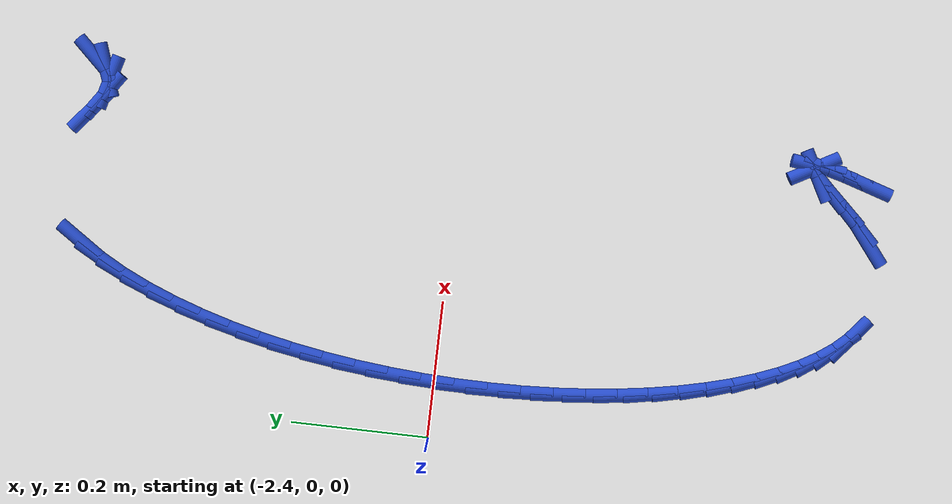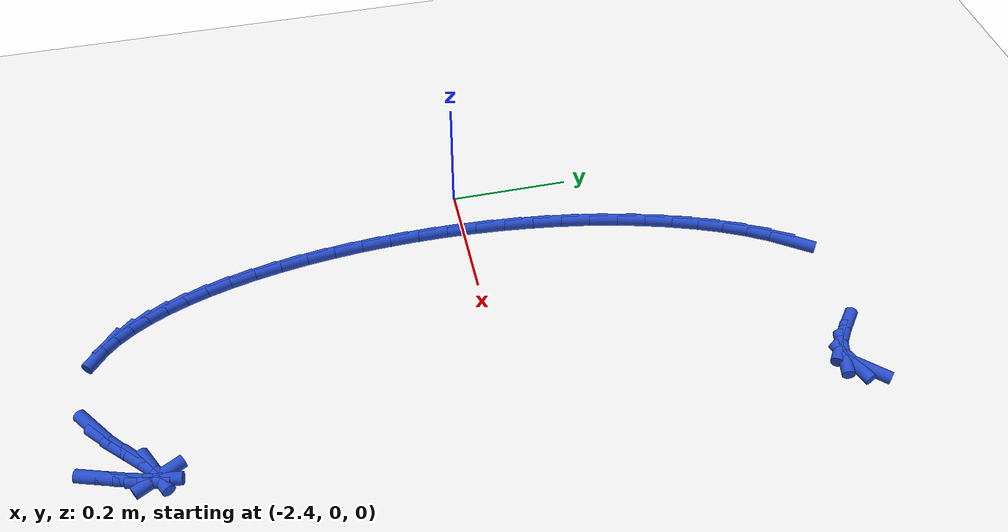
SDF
<sdf version="1.6">
 <world name="default">
  <model name="ground_plane">
   <static>1</static>
   <link name="link">
    <collision name="collision">
     <geometry><plane><normal>0 0 1</normal><size>100 100</size></plane></geometry>
     <surface><friction><ode><mu>100</mu><mu2>50</mu2></ode></friction></surface>
    </collision>
    <visual name="visual">
     <cast_shadows>0</cast_shadows>
     <geometry><plane><normal>0 0 1</normal><size>100 100</size></plane></geometry>
     <material>
      <script><uri>file://media/materials/scripts/gazebo.material</uri><name>Gazebo/WhiteGlow</name></script>
     </material>
    </visual>
   </link>
  </model>
  <model name="line">
   <link name="link_99">
    <pose>-1.906809323400924 0.5409290278547395 0.01 0 1.57 0.8167931215536853</pose>
    <collision name="collision">
     <geometry><cylinder><radius>0.01</radius><length>0.08</length></cylinder></geometry>
    </collision>
    <visual name="visual">
     <material>
      <script><name>Gazebo/Blue</name><uri>file://media/materials/scripts/gazebo.material</uri></script>
     </material>
     <geometry><cylinder><radius>0.01</radius><length>0.08</length></cylinder></geometry>
    </visual>
   </link>
   <link name="link_100">
    <pose>-1.921108359208225 0.5257027411152598 0.01 0 1.57 0.3353565191186797</pose>
    <collision name="collision">
     <geometry><cylinder><radius>0.01</radius><length>0.08</length></cylinder></geometry>
    </collision>
    <visual name="visual">
     <material>
      <script><name>Gazebo/Blue</name><uri>file://media/materials/scripts/gazebo.material</uri></script>
     </material>
     <geometry><cylinder><radius>0.01</radius><length>0.08</length></cylinder></geometry>
    </visual>
   </link>
   <link name="link_101">
    <pose>-1.937751852846533 0.519902135907028 0.01 0 1.57 -0.25641425727721084</pose>
    <collision name="collision">
     <geometry><cylinder><radius>0.01</radius><length>0.08</length></cylinder></geometry>
    </collision>
    <visual name="visual">
     <material>
      <script><name>Gazebo/Blue</name><uri>file://media/materials/scripts/gazebo.material</uri></script>
     </material>
     <geometry><cylinder><radius>0.01</radius><length>0.08</length></cylinder></geometry>
    </visual>
   </link>
   <link name="link_102">
    <pose>-1.9573944007874413 0.5250521308455129 0.01 0 1.57 -0.605454132422045</pose>
    <collision name="collision">
     <geometry><cylinder><radius>0.01</radius><length>0.08</length></cylinder></geometry>
    </collision>
    <visual name="visual">
     <material>
      <script><name>Gazebo/Blue</name><uri>file://media/materials/scripts/gazebo.material</uri></script>
     </material>
     <geometry><cylinder><radius>0.01</radius><length>0.08</length></cylinder></geometry>
    </visual>
   </link>
   <link name="link_103">
    <pose>-1.9802664832556274 0.5408835865972785 0.01 0 1.57 -0.6928064203830322</pose>
    <collision name="collision">
     <geometry><cylinder><radius>0.01</radius><length>0.08</length></cylinder></geometry>
    </collision>
    <visual name="visual">
     <material>
      <script><name>Gazebo/Blue</name><uri>file://media/materials/scripts/gazebo.material</uri></script>
     </material>
     <geometry><cylinder><radius>0.01</radius><length>0.08</length></cylinder></geometry>
    </visual>
   </link>
   <link name="link_111">
    <pose>-2.1729995002740634 0.5329822747591195 0.01 0 1.57 0.9794438816415018</pose>
    <collision name="collision">
     <geometry><cylinder><radius>0.01</radius><length>0.08</length></cylinder></geometry>
    </collision>
    <visual name="visual">
     <material>
      <script><name>Gazebo/Blue</name><uri>file://media/materials/scripts/gazebo.material</uri></script>
     </material>
     <geometry><cylinder><radius>0.01</radius><length>0.08</length></cylinder></geometry>
    </visual>
   </link>
   <link name="link_112">
    <pose>-2.193157319585092 0.5029639072756674 0.01 0 1.57 1.0691467052010173</pose>
    <collision name="collision">
     <geometry><cylinder><radius>0.01</radius><length>0.08</length></cylinder></geometry>
    </collision>
    <visual name="visual">
     <material>
      <script><name>Gazebo/Blue</name><uri>file://media/materials/scripts/gazebo.material</uri></script>
     </material>
     <geometry><cylinder><radius>0.01</radius><length>0.08</length></cylinder></geometry>
    </visual>
   </link>
   <link name="link_113">
    <pose>-2.2120582780178952 0.4685011785593793 0.01 0 1.57 1.1403304168800363</pose>
    <collision name="collision">
     <geometry><cylinder><radius>0.01</radius><length>0.08</length></cylinder></geometry>
    </collision>
    <visual name="visual">
     <material>
      <script><name>Gazebo/Blue</name><uri>file://media/materials/scripts/gazebo.material</uri></script>
     </material>
     <geometry><cylinder><radius>0.01</radius><length>0.08</length></cylinder></geometry>
    </visual>
   </link>
   <link name="link_114">
    <pose>-2.2296031325204053 0.43029249887586946 0.01 0 1.57 1.198949056230838</pose>
    <collision name="collision">
     <geometry><cylinder><radius>0.01</radius><length>0.08</length></cylinder></geometry>
    </collision>
    <visual name="visual">
     <material>
      <script><name>Gazebo/Blue</name><uri>file://media/materials/scripts/gazebo.material</uri></script>
     </material>
     <geometry><cylinder><radius>0.01</radius><length>0.08</length></cylinder></geometry>
    </visual>
   </link>
   <link name="link_115">
    <pose>-2.245692640040555 0.3890362784907521 0.01 0 1.57 1.249049889081817</pose>
    <collision name="collision">
     <geometry><cylinder><radius>0.01</radius><length>0.08</length></cylinder></geometry>
    </collision>
    <visual name="visual">
     <material>
      <script><name>Gazebo/Blue</name><uri>file://media/materials/scripts/gazebo.material</uri></script>
     </material>
     <geometry><cylinder><radius>0.01</radius><length>0.08</length></cylinder></geometry>
    </visual>
   </link>
   <link name="link_116">
    <pose>-2.260227557526275 0.345430927669643 0.01 0 1.57 1.293503705762621</pose>
    <collision name="collision">
     <geometry><cylinder><radius>0.01</radius><length>0.08</length></cylinder></geometry>
    </collision>
    <visual name="visual">
     <material>
      <script><name>Gazebo/Blue</name><uri>file://media/materials/scripts/gazebo.material</uri></script>
     </material>
     <geometry><cylinder><radius>0.01</radius><length>0.08</length></cylinder></geometry>
    </visual>
   </link>
   <link name="link_117">
    <pose>-2.273111768877924 0.30016366249812937 0.01 0 1.57 1.3342664124379706</pose>
    <collision name="collision">
     <geometry><cylinder><radius>0.01</radius><length>0.08</length></cylinder></geometry>
    </collision>
    <visual name="visual">
     <material>
      <script><name>Gazebo/Blue</name><uri>file://media/materials/scripts/gazebo.material</uri></script>
     </material>
     <geometry><cylinder><radius>0.01</radius><length>0.08</length></cylinder></geometry>
    </visual>
   </link>
   <link name="link_118">
    <pose>-2.2843138011984596 0.2536902827980969 0.01 0 1.57 1.3721663174378034</pose>
    <collision name="collision">
     <geometry><cylinder><radius>0.01</radius><length>0.08</length></cylinder></geometry>
    </collision>
    <visual name="visual">
     <material>
      <script><name>Gazebo/Blue</name><uri>file://media/materials/scripts/gazebo.material</uri></script>
     </material>
     <geometry><cylinder><radius>0.01</radius><length>0.08</length></cylinder></geometry>
    </visual>
   </link>
   <link name="link_119">
    <pose>-2.293863023351448 0.20624878091357815 0.01 0 1.57 1.4077055696269225</pose>
    <collision name="collision">
     <geometry><cylinder><radius>0.01</radius><length>0.08</length></cylinder></geometry>
    </collision>
    <visual name="visual">
     <material>
      <script><name>Gazebo/Blue</name><uri>file://media/materials/scripts/gazebo.material</uri></script>
     </material>
     <geometry><cylinder><radius>0.01</radius><length>0.08</length></cylinder></geometry>
    </visual>
   </link>
   <link name="link_120">
    <pose>-2.3017911699889386 0.15806867990013376 0.01 0 1.57 1.4413352562314745</pose>
    <collision name="collision">
     <geometry><cylinder><radius>0.01</radius><length>0.08</length></cylinder></geometry>
    </collision>
    <visual name="visual">
     <material>
      <script><name>Gazebo/Blue</name><uri>file://media/materials/scripts/gazebo.material</uri></script>
     </material>
     <geometry><cylinder><radius>0.01</radius><length>0.08</length></cylinder></geometry>
    </visual>
   </link>
   <link name="link_121">
    <pose>-2.3081299757629776 0.10937950281332486 0.01 0 1.57 1.4734670192099046</pose>
    <collision name="collision">
     <geometry><cylinder><radius>0.01</radius><length>0.08</length></cylinder></geometry>
    </collision>
    <visual name="visual">
     <material>
      <script><name>Gazebo/Blue</name><uri>file://media/materials/scripts/gazebo.material</uri></script>
     </material>
     <geometry><cylinder><radius>0.01</radius><length>0.08</length></cylinder></geometry>
    </visual>
   </link>
   <link name="link_122">
    <pose>-2.3129111753256137 0.06041077270871245 0.01 0 1.57 1.5044838578357718</pose>
    <collision name="collision">
     <geometry><cylinder><radius>0.01</radius><length>0.08</length></cylinder></geometry>
    </collision>
    <visual name="visual">
     <material>
      <script><name>Gazebo/Blue</name><uri>file://media/materials/scripts/gazebo.material</uri></script>
     </material>
     <geometry><cylinder><radius>0.01</radius><length>0.08</length></cylinder></geometry>
    </visual>
   </link>
   <link name="link_123">
    <pose>-2.316166503328893 0.011392012641856889 0.01 0 1.57 1.5347509807749373</pose>
    <collision name="collision">
     <geometry><cylinder><radius>0.01</radius><length>0.08</length></cylinder></geometry>
    </collision>
    <visual name="visual">
     <material>
      <script><name>Gazebo/Blue</name><uri>file://media/materials/scripts/gazebo.material</uri></script>
     </material>
     <geometry><cylinder><radius>0.01</radius><length>0.08</length></cylinder></geometry>
    </visual>
   </link>
   <link name="link_124">
    <pose>-2.3179276944248643 -0.03744725433167929 0.01 0 1.57 1.5646269379347642</pose>
    <collision name="collision">
     <geometry><cylinder><radius>0.01</radius><length>0.08</length></cylinder></geometry>
    </collision>
    <visual name="visual">
     <material>
      <script><name>Gazebo/Blue</name><uri>file://media/materials/scripts/gazebo.material</uri></script>
     </material>
     <geometry><cylinder><radius>0.01</radius><length>0.08</length></cylinder></geometry>
    </visual>
   </link>
   <link name="link_125">
    <pose>-2.318226483265575 -0.08587750515633565 0.01 0 1.57 -1.5471171747569328</pose>
    <collision name="collision">
     <geometry><cylinder><radius>0.01</radius><length>0.08</length></cylinder></geometry>
    </collision>
    <visual name="visual">
     <material>
      <script><name>Gazebo/Blue</name><uri>file://media/materials/scripts/gazebo.material</uri></script>
     </material>
     <geometry><cylinder><radius>0.01</radius><length>0.08</length></cylinder></geometry>
    </visual>
   </link>
   <link name="link_126">
    <pose>-2.3170946045030707 -0.13366921677655177 0.01 0 1.57 -1.5169138598160812</pose>
    <collision name="collision">
     <geometry><cylinder><radius>0.01</radius><length>0.08</length></cylinder></geometry>
    </collision>
    <visual name="visual">
     <material>
      <script><name>Gazebo/Blue</name><uri>file://media/materials/scripts/gazebo.material</uri></script>
     </material>
     <geometry><cylinder><radius>0.01</radius><length>0.08</length></cylinder></geometry>
    </visual>
   </link>
   <link name="link_127">
    <pose>-2.314563792789401 -0.18059286613676548 0.01 0 1.57 -1.4859396079321368</pose>
    <collision name="collision">
     <geometry><cylinder><radius>0.01</radius><length>0.08</length></cylinder></geometry>
    </collision>
    <visual name="visual">
     <material>
      <script><name>Gazebo/Blue</name><uri>file://media/materials/scripts/gazebo.material</uri></script>
     </material>
     <geometry><cylinder><radius>0.01</radius><length>0.08</length></cylinder></geometry>
    </visual>
   </link>
   <link name="link_128">
    <pose>-2.3106657827766126 -0.22641893018141596 0.01 0 1.57 -1.4537252107041712</pose>
    <collision name="collision">
     <geometry><cylinder><radius>0.01</radius><length>0.08</length></cylinder></geometry>
    </collision>
    <visual name="visual">
     <material>
      <script><name>Gazebo/Blue</name><uri>file://media/materials/scripts/gazebo.material</uri></script>
     </material>
     <geometry><cylinder><radius>0.01</radius><length>0.08</length></cylinder></geometry>
    </visual>
   </link>
   <link name="link_129">
    <pose>-2.3054323091167537 -0.2709178858549424 0.01 0 1.57 -1.4197240584472286</pose>
    <collision name="collision">
     <geometry><cylinder><radius>0.01</radius><length>0.08</length></cylinder></geometry>
    </collision>
    <visual name="visual">
     <material>
      <script><name>Gazebo/Blue</name><uri>file://media/materials/scripts/gazebo.material</uri></script>
     </material>
     <geometry><cylinder><radius>0.01</radius><length>0.08</length></cylinder></geometry>
    </visual>
   </link>
   <link name="link_130">
    <pose>-2.298895106461871 -0.31386021010178367 0.01 0 1.57 -1.3832800481411935</pose>
    <collision name="collision">
     <geometry><cylinder><radius>0.01</radius><length>0.08</length></cylinder></geometry>
    </collision>
    <visual name="visual">
     <material>
      <script><name>Gazebo/Blue</name><uri>file://media/materials/scripts/gazebo.material</uri></script>
     </material>
     <geometry><cylinder><radius>0.01</radius><length>0.08</length></cylinder></geometry>
    </visual>
   </link>
   <link name="link_131">
    <pose>-2.2910859094640115 -0.35501637986637863 0.01 0 1.57 -1.3435842871617092</pose>
    <collision name="collision">
     <geometry><cylinder><radius>0.01</radius><length>0.08</length></cylinder></geometry>
    </collision>
    <visual name="visual">
     <material>
      <script><name>Gazebo/Blue</name><uri>file://media/materials/scripts/gazebo.material</uri></script>
     </material>
     <geometry><cylinder><radius>0.01</radius><length>0.08</length></cylinder></geometry>
    </visual>
   </link>
   <link name="link_132">
    <pose>-2.2820364527752237 -0.39415687209316624 0.01 0 1.57 -1.2996157446668364</pose>
    <collision name="collision">
     <geometry><cylinder><radius>0.01</radius><length>0.08</length></cylinder></geometry>
    </collision>
    <visual name="visual">
     <material>
      <script><name>Gazebo/Blue</name><uri>file://media/materials/scripts/gazebo.material</uri></script>
     </material>
     <geometry><cylinder><radius>0.01</radius><length>0.08</length></cylinder></geometry>
    </visual>
   </link>
   <link name="link_133">
    <pose>-2.271778471047554 -0.43105216372658645 0.01 0 1.57 -1.2500593310110042</pose>
    <collision name="collision">
     <geometry><cylinder><radius>0.01</radius><length>0.08</length></cylinder></geometry>
    </collision>
    <visual name="visual">
     <material>
      <script><name>Gazebo/Blue</name><uri>file://media/materials/scripts/gazebo.material</uri></script>
     </material>
     <geometry><cylinder><radius>0.01</radius><length>0.08</length></cylinder></geometry>
    </visual>
   </link>
   <link name="link_134">
    <pose>-2.2603436989330508 -0.46547273171107584 0.01 0 1.57 -1.1931934989898938</pose>
    <collision name="collision">
     <geometry><cylinder><radius>0.01</radius><length>0.08</length></cylinder></geometry>
    </collision>
    <visual name="visual">
     <material>
      <script><name>Gazebo/Blue</name><uri>file://media/materials/scripts/gazebo.material</uri></script>
     </material>
     <geometry><cylinder><radius>0.01</radius><length>0.08</length></cylinder></geometry>
    </visual>
   </link>
   <link name="link_135">
    <pose>-2.2477638710837615 -0.4971890529910748 0.01 0 1.57 -1.1267404839115847</pose>
    <collision name="collision">
     <geometry><cylinder><radius>0.01</radius><length>0.08</length></cylinder></geometry>
    </collision>
    <visual name="visual">
     <material>
      <script><name>Gazebo/Blue</name><uri>file://media/materials/scripts/gazebo.material</uri></script>
     </material>
     <geometry><cylinder><radius>0.01</radius><length>0.08</length></cylinder></geometry>
    </visual>
   </link>
   <link name="link_136">
    <pose>-2.2340707221517335 -0.525971604511022 0.01 0 1.57 -1.0476822015319378</pose>
    <collision name="collision">
     <geometry><cylinder><radius>0.01</radius><length>0.08</length></cylinder></geometry>
    </collision>
    <visual name="visual">
     <material>
      <script><name>Gazebo/Blue</name><uri>file://media/materials/scripts/gazebo.material</uri></script>
     </material>
     <geometry><cylinder><radius>0.01</radius><length>0.08</length></cylinder></geometry>
    </visual>
   </link>
   <link name="link_137">
    <pose>-2.2192959867890147 -0.5515908632153563 0.01 0 1.57 -0.9520811039781029</pose>
    <collision name="collision">
     <geometry><cylinder><radius>0.01</radius><length>0.08</length></cylinder></geometry>
    </collision>
    <visual name="visual">
     <material>
      <script><name>Gazebo/Blue</name><uri>file://media/materials/scripts/gazebo.material</uri></script>
     </material>
     <geometry><cylinder><radius>0.01</radius><length>0.08</length></cylinder></geometry>
    </visual>
   </link>
   <link name="link_138">
    <pose>-2.203471399647651 -0.5738173060485168 0.01 0 1.57 -0.835048670912768</pose>
    <collision name="collision">
     <geometry><cylinder><radius>0.01</radius><length>0.08</length></cylinder></geometry>
    </collision>
    <visual name="visual">
     <material>
      <script><name>Gazebo/Blue</name><uri>file://media/materials/scripts/gazebo.material</uri></script>
     </material>
     <geometry><cylinder><radius>0.01</radius><length>0.08</length></cylinder></geometry>
    </visual>
   </link>
   <link name="link_139">
    <pose>-2.186628695379691 -0.5924214099549422 0.01 0 1.57 -0.6912415708592536</pose>
    <collision name="collision">
     <geometry><cylinder><radius>0.01</radius><length>0.08</length></cylinder></geometry>
    </collision>
    <visual name="visual">
     <material>
      <script><name>Gazebo/Blue</name><uri>file://media/materials/scripts/gazebo.material</uri></script>
     </material>
     <geometry><cylinder><radius>0.01</radius><length>0.08</length></cylinder></geometry>
    </visual>
   </link>
   <link name="link_146">
    <pose>-2.0428881967312646 -0.6019447106842102 0.01 0 1.57 0.6634211855150152</pose>
    <collision name="collision">
     <geometry><cylinder><radius>0.01</radius><length>0.08</length></cylinder></geometry>
    </collision>
    <visual name="visual">
     <material>
      <script><name>Gazebo/Blue</name><uri>file://media/materials/scripts/gazebo.material</uri></script>
     </material>
     <geometry><cylinder><radius>0.01</radius><length>0.08</length></cylinder></geometry>
    </visual>
   </link>
   <link name="link_147">
    <pose>-2.019043002924244 -0.5833072731765567 0.01 0 1.57 0.772413967675266</pose>
    <collision name="collision">
     <geometry><cylinder><radius>0.01</radius><length>0.08</length></cylinder></geometry>
    </collision>
    <visual name="visual">
     <material>
      <script><name>Gazebo/Blue</name><uri>file://media/materials/scripts/gazebo.material</uri></script>
     </material>
     <geometry><cylinder><radius>0.01</radius><length>0.08</length></cylinder></geometry>
    </visual>
   </link>
   <link name="link_148">
    <pose>-1.9947679590466256 -0.5596545675525821 0.01 0 1.57 0.8152183729248283</pose>
    <collision name="collision">
     <geometry><cylinder><radius>0.01</radius><length>0.08</length></cylinder></geometry>
    </collision>
    <visual name="visual">
     <material>
      <script><name>Gazebo/Blue</name><uri>file://media/materials/scripts/gazebo.material</uri></script>
     </material>
     <geometry><cylinder><radius>0.01</radius><length>0.08</length></cylinder></geometry>
    </visual>
   </link>
   <link name="link_149">
    <pose>-1.9724256607022668 -0.5359383884987498 0.01 0 1.57 0.7784592238975028</pose>
    <collision name="collision">
     <geometry><cylinder><radius>0.01</radius><length>0.08</length></cylinder></geometry>
    </collision>
    <visual name="visual">
     <material>
      <script><name>Gazebo/Blue</name><uri>file://media/materials/scripts/gazebo.material</uri></script>
     </material>
     <geometry><cylinder><radius>0.01</radius><length>0.08</length></cylinder></geometry>
    </visual>
   </link>
   <link name="link_150">
    <pose>-1.9552109413894558 -0.5189609304440305 0.01 0 1.57 0.4934067005352316</pose>
    <collision name="collision">
     <geometry><cylinder><radius>0.01</radius><length>0.08</length></cylinder></geometry>
    </collision>
    <visual name="visual">
     <material>
      <script><name>Gazebo/Blue</name><uri>file://media/materials/scripts/gazebo.material</uri></script>
     </material>
     <geometry><cylinder><radius>0.01</radius><length>0.08</length></cylinder></geometry>
    </visual>
   </link>
   <link name="link_151">
    <pose>-1.9453110221929306 -0.5136370306393039 0.01 0 1.57 -1.0648334130017125</pose>
    <collision name="collision">
     <geometry><cylinder><radius>0.01</radius><length>0.08</length></cylinder></geometry>
    </collision>
    <visual name="visual">
     <material>
      <script><name>Gazebo/Blue</name><uri>file://media/materials/scripts/gazebo.material</uri></script>
     </material>
     <geometry><cylinder><radius>0.01</radius><length>0.08</length></cylinder></geometry>
    </visual>
   </link>
   <link name="link_152">
    <pose>-1.942051774071682 -0.5195194023747158 0.01 0 1.57 1.4313014913817617</pose>
    <collision name="collision">
     <geometry><cylinder><radius>0.01</radius><length>0.08</length></cylinder></geometry>
    </collision>
    <visual name="visual">
     <material>
      <script><name>Gazebo/Blue</name><uri>file://media/materials/scripts/gazebo.material</uri></script>
     </material>
     <geometry><cylinder><radius>0.01</radius><length>0.08</length></cylinder></geometry>
    </visual>
   </link>
   <link name="link_153">
    <pose>-1.9442559530277177 -0.535217929630023 0.01 0 1.57 1.307983785688044</pose>
    <collision name="collision">
     <geometry><cylinder><radius>0.01</radius><length>0.08</length></cylinder></geometry>
    </collision>
    <visual name="visual">
     <material>
      <script><name>Gazebo/Blue</name><uri>file://media/materials/scripts/gazebo.material</uri></script>
     </material>
     <geometry><cylinder><radius>0.01</radius><length>0.08</length></cylinder></geometry>
    </visual>
   </link>
   <link name="link_154">
    <pose>-1.9507463150630462 -0.5593424963849821 0.01 0 1.57 1.2719615235312545</pose>
    <collision name="collision">
     <geometry><cylinder><radius>0.01</radius><length>0.08</length></cylinder></geometry>
    </collision>
    <visual name="visual">
     <material>
      <script><name>Gazebo/Blue</name><uri>file://media/materials/scripts/gazebo.material</uri></script>
     </material>
     <geometry><cylinder><radius>0.01</radius><length>0.08</length></cylinder></geometry>
    </visual>
   </link>
   <link name="link_155">
    <pose>-1.9603456161796753 -0.5905029866193497 0.01 0 1.57 1.2671931125453533</pose>
    <collision name="collision">
     <geometry><cylinder><radius>0.01</radius><length>0.08</length></cylinder></geometry>
    </collision>
    <visual name="visual">
     <material>
      <script><name>Gazebo/Blue</name><uri>file://media/materials/scripts/gazebo.material</uri></script>
     </material>
     <geometry><cylinder><radius>0.01</radius><length>0.08</length></cylinder></geometry>
    </visual>
   </link>
  </model>
 </world>
</sdf>
